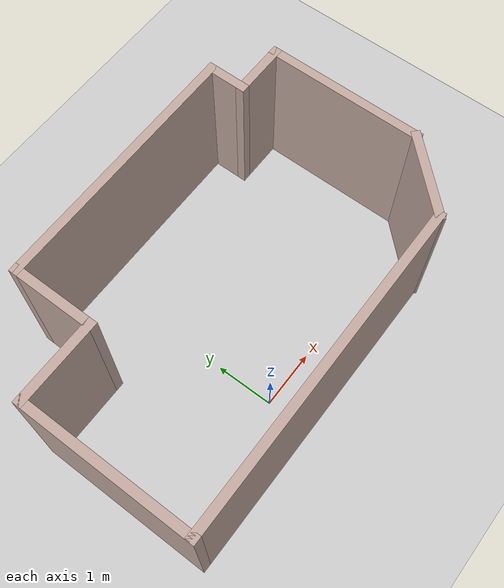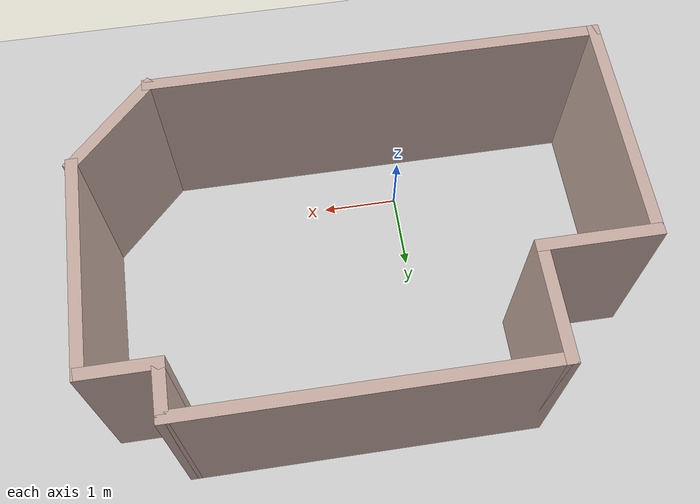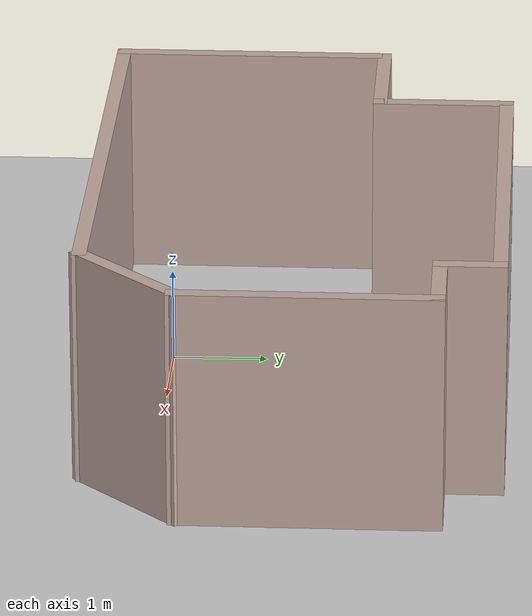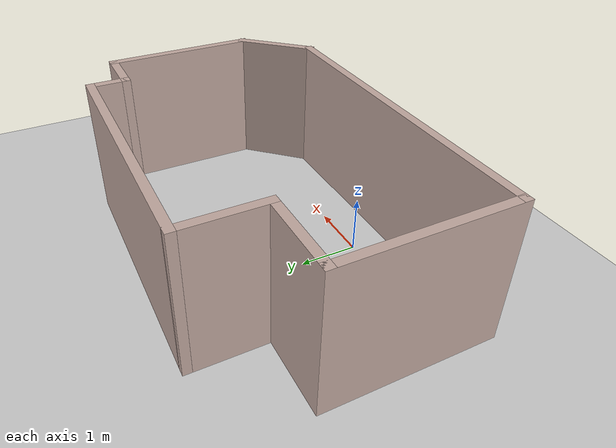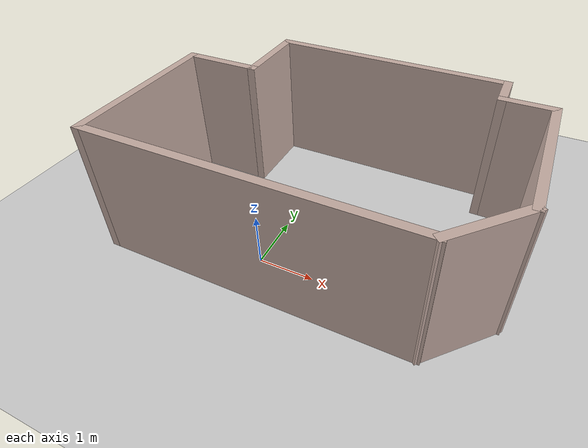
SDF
<sdf version="1.7">
 <world name="default">
  <light name="sun" type="directional">
   <pose>0 0 10 0 -0 0</pose>
   <diffuse>0.8 0.8 0.8 1</diffuse>
   <specular>0.2 0.2 0.2 1</specular>
   <attenuation>
    <range>1000</range>
    <constant>0.9</constant>
    <linear>0.01</linear>
    <quadratic>0.001</quadratic>
   </attenuation>
   <direction>-0.5 0.1 -0.9</direction>
   <spot><inner_angle>0</inner_angle><outer_angle>0</outer_angle><falloff>0</falloff></spot>
  </light>
  <model name="ground_plane">
   <static>1</static>
   <link name="link">
    <collision name="collision">
     <geometry><plane><normal>0 0 1</normal><size>100 100</size></plane></geometry>
     <surface>
      <contact><collide_bitmask>65535</collide_bitmask></contact>
      <friction><ode><mu>100</mu><mu2>50</mu2></ode></friction>
     </surface>
    </collision>
    <visual name="visual">
     <cast_shadows>0</cast_shadows>
     <geometry><plane><normal>0 0 1</normal><size>100 100</size></plane></geometry>
     <material>
      <script><uri>file://media/materials/scripts/gazebo.material</uri><name>Gazebo/Grey</name></script>
     </material>
    </visual>
   </link>
  </model>
  <gravity>0 0 -9.8</gravity>
  <magnetic_field>6e-06 2.3e-05 -4.2e-05</magnetic_field>
  <atmosphere type="adiabatic"/>
  <physics type="ode">
   <max_step_size>0.001</max_step_size>
   <real_time_factor>1</real_time_factor>
   <real_time_update_rate>1000</real_time_update_rate>
  </physics>
  <scene><ambient>0.4 0.4 0.4 1</ambient><background>0.7 0.7 0.7 1</background><shadows>1</shadows></scene>
  <spherical_coordinates>
   <surface_model>EARTH_WGS84</surface_model>
   <latitude_deg>0</latitude_deg>
   <longitude_deg>0</longitude_deg>
   <elevation>0</elevation>
   <heading_deg>0</heading_deg>
  </spherical_coordinates>
  <model name="arena0.world">
   <pose>0.722406 1.38064 0 0 -0 0</pose>
   <link name="Wall_0">
    <collision name="Wall_0_Collision">
     <geometry><box><size>3 0.15 2.5</size></box></geometry>
     <pose>0 0 1.25 0 -0 0</pose>
    </collision>
    <visual name="Wall_0_Visual">
     <pose>0 0 1.25 0 -0 0</pose>
     <geometry><box><size>3 0.15 2.5</size></box></geometry>
     <material>
      <script><uri>file://media/materials/scripts/gazebo.material</uri><name>Gazebo/Grey</name></script>
      <ambient>0.760784 0.662745 0.627451 1</ambient>
     </material>
     <meta><layer>0</layer></meta>
    </visual>
    <pose>-3.29052 -0.659485 0 0 -0 -1.5708</pose>
   </link>
   <link name="Wall_10">
    <collision name="Wall_10_Collision">
     <geometry><box><size>4.5 0.15 2.5</size></box></geometry>
     <pose>0 0 1.25 0 -0 0</pose>
    </collision>
    <visual name="Wall_10_Visual">
     <pose>0 0 1.25 0 -0 0</pose>
     <geometry><box><size>4.5 0.15 2.5</size></box></geometry>
     <material>
      <script><uri>file://media/materials/scripts/gazebo.material</uri><name>Gazebo/Grey</name></script>
      <ambient>0.760784 0.662745 0.627451 1</ambient>
     </material>
     <meta><layer>0</layer></meta>
    </visual>
    <pose>0.234485 2.11551 0 0 -0 0</pose>
   </link>
   <link name="Wall_11">
    <collision name="Wall_11_Collision">
     <geometry><box><size>0.75 0.15 2.5</size></box></geometry>
     <pose>0 0 1.25 0 -0 0</pose>
    </collision>
    <visual name="Wall_11_Visual">
     <pose>0 0 1.25 0 -0 0</pose>
     <geometry><box><size>0.75 0.15 2.5</size></box></geometry>
     <material>
      <script><uri>file://media/materials/scripts/gazebo.material</uri><name>Gazebo/Grey</name></script>
      <ambient>0.760784 0.662745 0.627451 1</ambient>
     </material>
     <meta><layer>0</layer></meta>
    </visual>
    <pose>2.40949 1.81551 0 0 -0 -1.5708</pose>
   </link>
   <link name="Wall_12">
    <collision name="Wall_12_Collision">
     <geometry><box><size>1 0.15 2.5</size></box></geometry>
     <pose>0 0 1.25 0 -0 0</pose>
    </collision>
    <visual name="Wall_12_Visual">
     <pose>0 0 1.25 0 -0 0</pose>
     <geometry><box><size>1 0.15 2.5</size></box></geometry>
     <material>
      <script><uri>file://media/materials/scripts/gazebo.material</uri><name>Gazebo/Grey</name></script>
      <ambient>0.760784 0.662745 0.627451 1</ambient>
     </material>
     <meta><layer>0</layer></meta>
    </visual>
    <pose>2.83448 1.51552 0 0 -0 0</pose>
   </link>
   <link name="Wall_13">
    <collision name="Wall_13_Collision">
     <geometry><box><size>2.75 0.15 2.5</size></box></geometry>
     <pose>0 0 1.25 0 -0 0</pose>
    </collision>
    <visual name="Wall_13_Visual">
     <pose>0 0 1.25 0 -0 0</pose>
     <geometry><box><size>2.75 0.15 2.5</size></box></geometry>
     <material>
      <script><uri>file://media/materials/scripts/gazebo.material</uri><name>Gazebo/Grey</name></script>
      <ambient>0.760784 0.662745 0.627451 1</ambient>
     </material>
     <meta><layer>0</layer></meta>
    </visual>
    <pose>3.25949 0.215515 0 0 -0 -1.5708</pose>
   </link>
   <link name="Wall_15">
    <collision name="Wall_15_Collision">
     <geometry><box><size>5.75 0.15 2.5</size></box></geometry>
     <pose>0 0 1.25 0 -0 0</pose>
    </collision>
    <visual name="Wall_15_Visual">
     <pose>0 0 1.25 0 -0 0</pose>
     <geometry><box><size>5.75 0.15 2.5</size></box></geometry>
     <material>
      <script><uri>file://media/materials/scripts/gazebo.material</uri><name>Gazebo/Grey</name></script>
      <ambient>0.760784 0.662745 0.627451 1</ambient>
     </material>
     <meta><layer>0</layer></meta>
    </visual>
    <pose>-0.490515 -2.08448 0 0 -0 0</pose>
   </link>
   <link name="Wall_16">
    <collision name="Wall_16_Collision">
     <geometry><box><size>1.52931 0.15 2.5</size></box></geometry>
     <pose>0 0 1.25 0 -0 0</pose>
    </collision>
    <visual name="Wall_16_Visual">
     <pose>0 0 1.25 0 -0 0</pose>
     <geometry><box><size>1.52931 0.15 2.5</size></box></geometry>
     <material>
      <script><uri>file://media/materials/scripts/gazebo.material</uri><name>Gazebo/Grey</name></script>
      <ambient>0.760784 0.662745 0.627451 1</ambient>
     </material>
     <meta><layer>0</layer></meta>
    </visual>
    <pose>2.78449 -1.58448 0 0 -0 0.811034</pose>
   </link>
   <link name="Wall_4">
    <collision name="Wall_4_Collision">
     <geometry><box><size>1.5 0.15 2.5</size></box></geometry>
     <pose>0 0 1.25 0 -0 0</pose>
    </collision>
    <visual name="Wall_4_Visual">
     <pose>0 0 1.25 0 -0 0</pose>
     <geometry><box><size>1.5 0.15 2.5</size></box></geometry>
     <material>
      <script><uri>file://media/materials/scripts/gazebo.material</uri><name>Gazebo/Grey</name></script>
      <ambient>0.760784 0.662745 0.627451 1</ambient>
     </material>
     <meta><layer>0</layer></meta>
    </visual>
    <pose>-2.61551 0.765516 0 0 -0 0</pose>
   </link>
   <link name="Wall_6">
    <collision name="Wall_6_Collision">
     <geometry><box><size>1.5 0.15 2.5</size></box></geometry>
     <pose>0 0 1.25 0 -0 0</pose>
    </collision>
    <visual name="Wall_6_Visual">
     <pose>0 0 1.25 0 -0 0</pose>
     <geometry><box><size>1.5 0.15 2.5</size></box></geometry>
     <material>
      <script><uri>file://media/materials/scripts/gazebo.material</uri><name>Gazebo/Grey</name></script>
      <ambient>0.760784 0.662745 0.627451 1</ambient>
     </material>
     <meta><layer>0</layer></meta>
    </visual>
    <pose>-1.94051 1.44051 0 0 -0 1.5708</pose>
   </link>
   <static>1</static>
  </model>
 </world>
</sdf>
